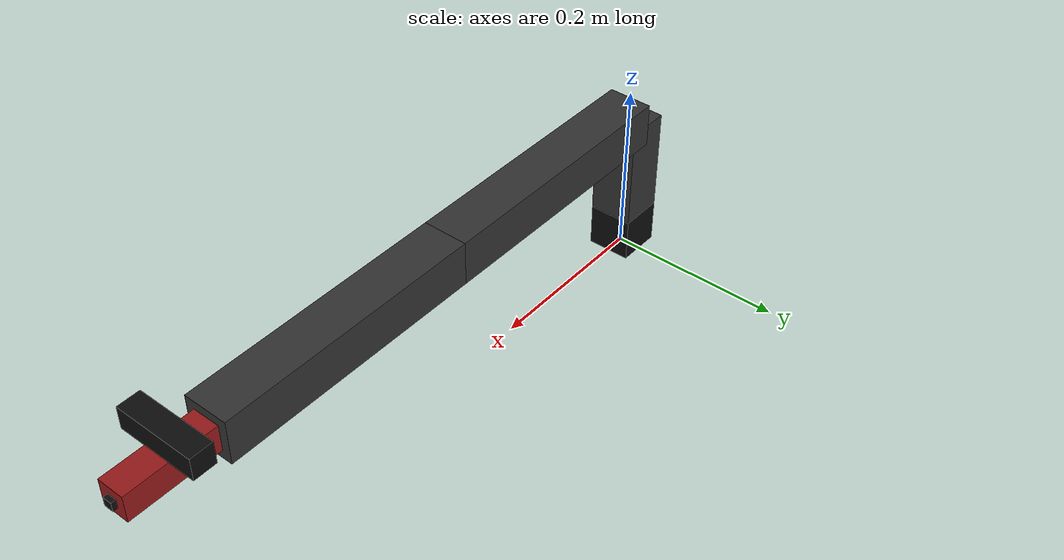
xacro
<?xml version="1.0"?>
<robot xmlns:xacro="http://www.ros.org/wiki/xacro" name="open_manipulator_x">
    <xacro:arg name="initial_positions_file" default="$(find manipulator_moveit)/config/initial_positions.yaml" />

    <!-- Import open_manipulator_x urdf file -->
    <xacro:include filename="$(find manipulator)/description/capstone_manipulator.urdf.xacro" />

    <!-- Import control_xacro -->
    <xacro:include filename="manipulator.ros2_control.xacro" />

    <xacro:manipulator_ros2_control name="FakeSystem" initial_positions_file="$(arg initial_positions_file)"/>

</robot>

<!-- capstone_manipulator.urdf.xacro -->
<!-- |    This document was autogenerated by xacro from capstone_manipulator.urdf.xacro | -->
<!-- |    EDITING THIS FILE BY HAND IS NOT RECOMMENDED                                 | -->
<robot name="manipulator">
  <!-- Optional materials for RViz -->
  <material name="grey">
    <color rgba="0.2 0.2 0.2 1.0"/>
  </material>
  <material name="dark_grey">
    <color rgba="0.05 0.05 0.05 1.0"/>
  </material>
  <material name="red">
    <color rgba="0.6 0.1 0.1 1.0"/>
  </material>

  <!-- =========================
       link1 (base block on robot, bottom at z=0)
       size: 0.05 x 0.05 x 0.05
       ========================= -->
  <link name="link1">
    <visual>
      <origin rpy="0 0 0" xyz="0 0 0.025"/>
      <geometry>
        <box size="0.05 0.05 0.05"/>
      </geometry>
      <material name="dark_grey"/>
    </visual>
    <collision>
      <origin rpy="0 0 0" xyz="0 0 0.025"/>
      <geometry>
        <box size="0.05 0.05 0.05"/>
      </geometry>
    </collision>
    <inertial>
      <origin rpy="0 0 0" xyz="0 0 0.025"/>
      <mass value="1.0"/>
      <inertia ixx="0.0004166667" ixy="0" ixz="0" iyy="0.0004166667" iyz="0" izz="0.0004166667"/>
    </inertial>
  </link>

  <!-- joint1: base yaw (Z) -->
  <joint name="joint1" type="revolute">
    <parent link="link1"/>
    <child link="link2"/>
    <origin rpy="0 0 0" xyz="0 0 0.05"/>
    <axis xyz="0 0 1"/>
    <limit effort="0.1" lower="-3.14159265359" upper="3.14159265359" velocity="4.8"/>
  </joint>

  <!-- =========================
       link2 (vertical riser)
       length: 0.12m, cross-section: 0.05 x 0.05
       ========================= -->
  <link name="link2">
    <visual>
      <origin rpy="0 0 0" xyz="0 0 0.06"/>
      <geometry>
        <box size="0.05 0.05 0.12"/>
      </geometry>
      <material name="grey"/>
    </visual>
    <collision>
      <origin rpy="0 0 0" xyz="0 0 0.06"/>
      <geometry>
        <box size="0.05 0.05 0.12"/>
      </geometry>
    </collision>
    <inertial>
      <origin rpy="0 0 0" xyz="0 0 0.06"/>
      <mass value="0.8"/>
      <inertia ixx="0.0019866667" ixy="0" ixz="0" iyy="0.0019866667" iyz="0" izz="0.0003333333"/>
    </inertial>
  </link>

  <!-- joint2: shoulder pitch (Y) at top of link2 -->
  <joint name="joint2" type="revolute">
    <parent link="link2"/>
    <child link="link3"/>
    <origin rpy="0 0 0" xyz="0 0 0.12"/>
    <axis xyz="0 1 0"/>
    <limit effort="0.1" lower="-3.14159265359" upper="0.785398" velocity="4.8"/>
  </joint>

  <!-- =========================
       link3 (upper arm)
       length: 0.30m along +X, cross-section: 0.05 x 0.05
       ========================= -->
  <link name="link3">
    <visual>
      <origin rpy="0 0 0" xyz="0.15 0 0"/>
      <geometry>
        <box size="0.30 0.05 0.05"/>
      </geometry>
      <material name="grey"/>
    </visual>
    <collision>
      <origin rpy="0 0 0" xyz="0.15 0 0"/>
      <geometry>
        <box size="0.30 0.05 0.05"/>
      </geometry>
    </collision>
    <inertial>
      <origin rpy="0 0 0" xyz="0.15 0 0"/>
      <mass value="0.6"/>
      <inertia ixx="0.0002500000" ixy="0" ixz="0" iyy="0.0046250000" iyz="0" izz="0.0046250000"/>
    </inertial>
  </link>

  <!-- joint3: elbow pitch (Y) at end of link3 -->
  <joint name="joint3" type="revolute">
    <parent link="link3"/>
    <child link="link4"/>
    <origin rpy="0 0 0" xyz="0.30 0 0"/>
    <axis xyz="0 1 0"/>
    <limit effort="0.1" lower="0" upper="2.7" velocity="4.8"/>
  </joint>

  <!-- =========================
       link4 (forearm)
       length: 0.30m along +X
       ========================= -->
  <link name="link4">
    <visual>
      <origin rpy="0 0 0" xyz="0.15 0 0"/>
      <geometry>
        <box size="0.30 0.05 0.05"/>
      </geometry>
      <material name="grey"/>
    </visual>
    <collision>
      <origin rpy="0 0 0" xyz="0.15 0 0"/>
      <geometry>
        <box size="0.30 0.05 0.05"/>
      </geometry>
    </collision>
    <inertial>
      <origin rpy="0 0 0" xyz="0.15 0 0"/>
      <mass value="0.5"/>
      <inertia ixx="0.0002083333" ixy="0" ixz="0" iyy="0.0038541667" iyz="0" izz="0.0038541667"/>
    </inertial>
  </link>

  <!-- joint4: wrist pitch (Y) at end of link4 -->
  <joint name="joint4" type="revolute">
    <parent link="link4"/>
    <child link="link5"/>
    <origin rpy="0 0 0" xyz="0.30 0 0"/>
    <axis xyz="0 1 0"/>
    <limit effort="0.1" lower="-1.5" upper="1.5" velocity="4.8"/>
  </joint>

  <link name="link5">
    <visual>
      <origin rpy="0 0 0" xyz="0.05 0 0"/>
      <geometry>
        <box size="0.10 0.03 0.03"/>
      </geometry>
      <material name="red"/>
    </visual>
    <collision>
      <origin rpy="0 0 0" xyz="0.05 0 0"/>
      <geometry>
        <box size="0.10 0.03 0.03"/>
      </geometry>
    </collision>
    <inertial>
      <origin rpy="0 0 0" xyz="0.05 0 0"/>
      <mass value="0.2"/>
      <inertia ixx="0.0000300000" ixy="0" ixz="0" iyy="0.0001766667" iyz="0" izz="0.0001766667"/>
    </inertial>
  </link>

  <link name="ee_link">
    <visual>
      <origin rpy="0 0 0" xyz="0 0 0"/>
      <geometry>
        <box size="0.01 0.01 0.01"/>
      </geometry>
      <material name="dark_grey"/>
    </visual>
    <collision>
      <origin rpy="0 0 0" xyz="0 0 0"/>
      <geometry>
        <box size="0.01 0.01 0.01"/>
      </geometry>
    </collision>
    <inertial>
      <origin rpy="0 0 0" xyz="0 0 0"/>
      <mass value="0.05"/>
      <inertia ixx="0.0000008333" ixy="0" ixz="0" iyy="0.0000008333" iyz="0" izz="0.0000008333"/>
    </inertial>
  </link>

  <joint name="ee_fixed_joint" type="fixed">
    <parent link="link5"/>
    <child link="ee_link"/>
    <origin rpy="0 0 0" xyz="0.10 0 0"/>
  </joint>

  <!-- RealSense Camera Link -->
  <link name="camera_link">
    <visual>
      <origin rpy="0 0 0" xyz="0 0 0"/>
      <geometry>
        <box size="0.025 0.09 0.025"/>
      </geometry>
      <material name="dark_grey"/>
    </visual>
    <inertial>
      <origin rpy="0 0 0" xyz="0 0 0"/>
      <mass value="0.1"/>
      <inertia ixx="0.0000735417" ixy="0" ixz="0" iyy="0.0000020833" iyz="0" izz="0.0000735417"/>
    </inertial>
  </link>

  <!-- Joint connecting last link and camera_link  -->
  <joint name="camera_joint" type="fixed">
    <parent link="link5"/>
    <child link="camera_link"/>
    <origin rpy="0 0 0" xyz="0.04 0.0 0.027"/>
  </joint>
</robot>
